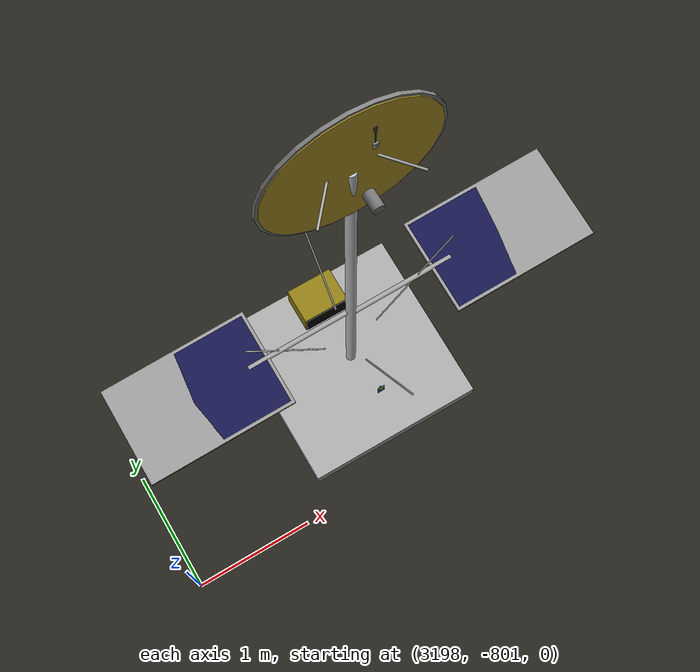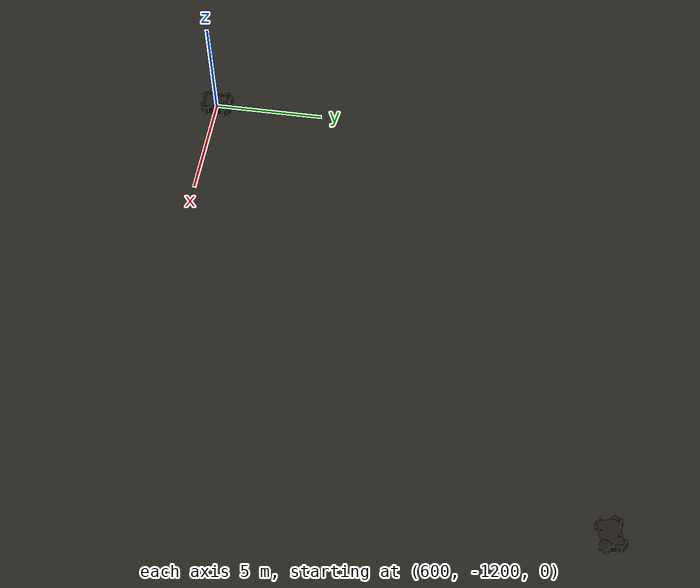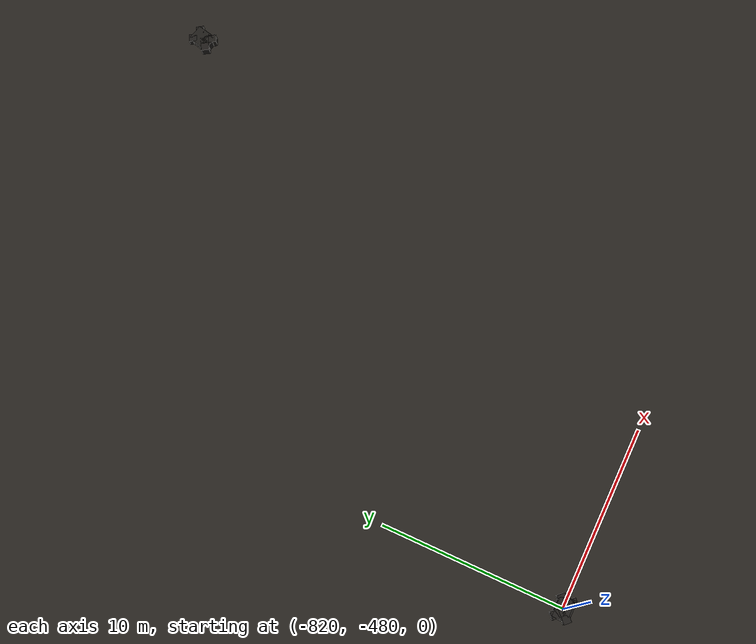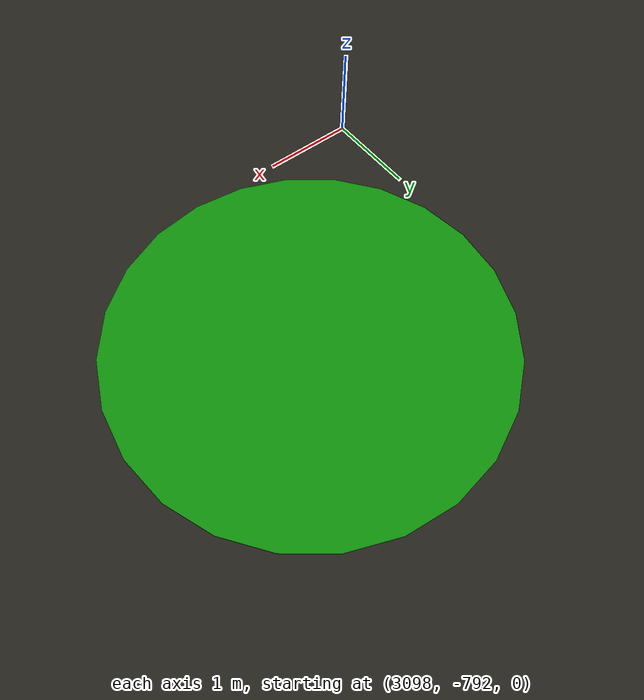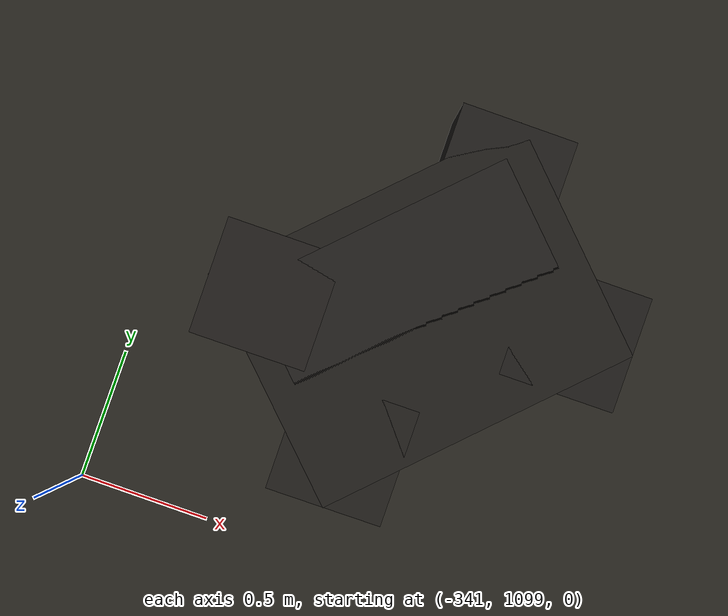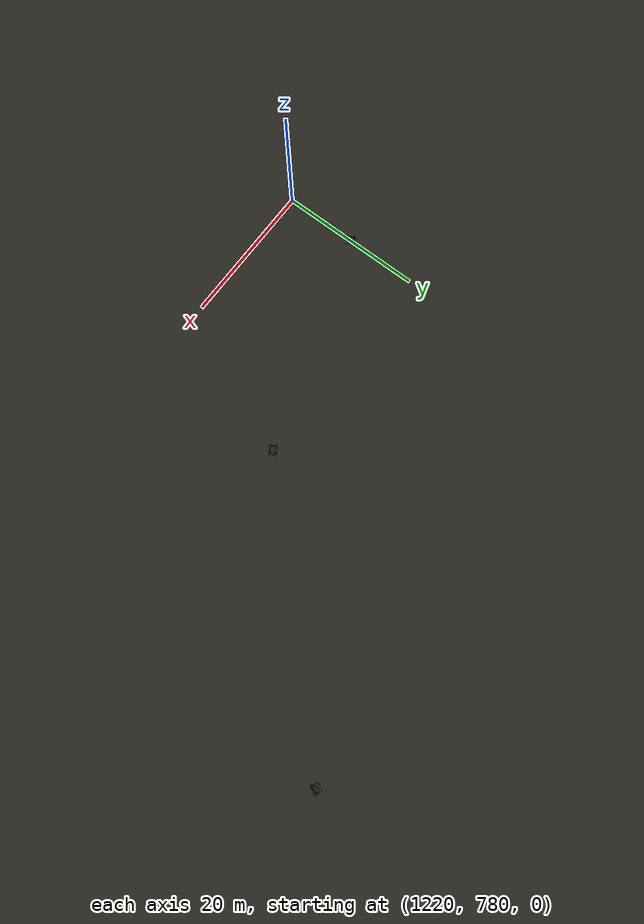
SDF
<?xml version="1.0" ?>
<sdf version="1.9">
  <world name="lunar_south_pole">

    <!-- ================================================================
         PHYSICS
         ================================================================ -->
    <physics name="lunar_ode" type="ode" default="true">
      <!-- Lunar surface gravity: 1.62 m/s² downward -->
      <gravity>0 0 -1.62</gravity>

      <!-- Real-time factor: 1.0 for hardware-in-the-loop testing -->
      <real_time_factor>1.0</real_time_factor>
      <real_time_update_rate>1000</real_time_update_rate>
      <max_step_size>0.001</max_step_size>

      <ode>
        <solver>
          <!-- Quickstep with high iterations for stable regolith contact -->
          <type>quick</type>
          <iters>200</iters>
          <precon_iters>0</precon_iters>
          <sor>1.3</sor>
          <use_dynamic_moi_rescaling>true</use_dynamic_moi_rescaling>
        </solver>
        <constraints>
          <!-- Tight tolerances for rover wheel contact accuracy -->
          <cfm>1e-5</cfm>
          <erp>0.2</erp>
          <contact_max_correcting_vel>100</contact_max_correcting_vel>
          <contact_surface_layer>0.001</contact_surface_layer>
        </constraints>
      </ode>
    </physics>

    <scene>
      <ambient>0.05 0.05 0.05 1</ambient>
      <background>0.0 0.0 0.0 1</background>  <!-- black sky (no atmosphere) -->
      <sky>
        <clouds>
          <speed>0</speed>
        </clouds>
      </sky>
      <!-- Shadows disabled: WSL2 Mesa D3D12 lacks GL3PlusTextureGpu::copyTo -->
      <shadows>false</shadows>
      <fog>
        <!-- No fog - vacuum environment -->
        <type>none</type>
      </fog>
    </scene>

    <!-- Directional sun light - low-angle, casting very long shadows -->
    <light name="sun" type="directional">
      <cast_shadows>false</cast_shadows>
      <pose>0 0 10 0 0 0</pose>
      <!-- Direction vector pointing toward the light source -->
      <direction>0.0 0.9994 -0.0349</direction>
      <!-- Slightly warm sunlight (no atmospheric scattering, raw solar) -->
      <diffuse>1.0 0.95 0.85 1</diffuse>
      <specular>0.5 0.5 0.4 1</specular>
      <attenuation>
        <range>1000</range>
        <constant>0.9</constant>
        <linear>0.01</linear>
        <quadratic>0.001</quadratic>
      </attenuation>
    </light>

    <!-- Weak fill light simulating Earthshine / instrument self-illumination -->
    <light name="earthshine" type="directional">
      <cast_shadows>false</cast_shadows>
      <direction>0 0 -1</direction>
      <diffuse>0.01 0.01 0.02 1</diffuse>
      <specular>0 0 0 1</specular>
    </light>

    <model name="terrain">
      <static>true</static>
      <link name="terrain_link">
        <collision name="terrain_collision">
          <geometry>
            <plane>
              <normal>0 0 1</normal>
              <size>5000 5000</size>
            </plane>
          </geometry>
          <surface>
            <friction>
              <ode>
                <!-- Regolith friction coefficients (Heiken 1991, Carrier 1991) -->
                <mu>0.7</mu>
                <mu2>0.65</mu2>
                <fdir1>1 0 0</fdir1>
                <slip1>0.0</slip1>
                <slip2>0.0</slip2>
              </ode>
              <bullet>
                <friction>0.7</friction>
                <friction2>0.65</friction2>
                <rolling_friction>0.05</rolling_friction>
              </bullet>
            </friction>
            <bounce>
              <restitution_coefficient>0.01</restitution_coefficient>
              <threshold>100000</threshold>
            </bounce>
            <contact>
              <ode>
                <soft_cfm>1e-5</soft_cfm>
                <soft_erp>0.15</soft_erp>
                <kp>1e6</kp>
                <kd>100</kd>
                <max_vel>0.1</max_vel>
                <min_depth>0.001</min_depth>
              </ode>
            </contact>
          </surface>
        </collision>
        <visual name="terrain_visual">
          <geometry>
            <plane>
              <normal>0 0 1</normal>
              <size>5000 5000</size>
            </plane>
          </geometry>
          <material>
            <!-- Lunar regolith albedo ~0.12 (Apollo measurements) -->
            <ambient>0.10 0.09 0.08 1</ambient>
            <diffuse>0.14 0.13 0.11 1</diffuse>
            <specular>0.01 0.01 0.01 1</specular>
          </material>
        </visual>
      </link>
    </model>

    <!-- Boulder cluster near Shackleton rim (NE quadrant) -->
    <include>
      <uri>model://lunar_boulder</uri>
      <name>boulder_001</name>
      <pose>1250.0 800.0 0 0.0 0.0 0.523</pose>
    </include>

    <include>
      <uri>model://lunar_boulder</uri>
      <name>boulder_002</name>
      <pose>1280.0 830.0 0 0.12 0.0 1.047</pose>
      <scale>0.6 0.6 0.6</scale>
    </include>

    <include>
      <uri>model://lunar_boulder</uri>
      <name>boulder_003</name>
      <pose>1220.0 790.0 0 0.0 0.08 2.094</pose>
      <scale>1.4 1.4 1.4</scale>
    </include>

    <!-- Isolated boulder - traverse path obstacle -->
    <include>
      <uri>model://lunar_boulder</uri>
      <name>boulder_004</name>
      <pose>-340.0 1100.0 0 0.05 0.0 0.785</pose>
      <scale>0.8 0.8 0.8</scale>
    </include>

    <!-- Boulder cluster near crater_alpha -->
    <include>
      <uri>model://lunar_boulder</uri>
      <name>boulder_005</name>
      <pose>-800.0 -450.0 0 0.0 0.15 1.309</pose>
    </include>

    <include>
      <uri>model://lunar_boulder</uri>
      <name>boulder_006</name>
      <pose>-820.0 -480.0 0 0.1 0.0 0.0</pose>
      <scale>1.8 1.8 1.8</scale>
    </include>

    <!-- Scattered boulders - SW quadrant -->
    <include>
      <uri>model://lunar_boulder</uri>
      <name>boulder_007</name>
      <pose>-1500.0 -200.0 0 0.0 0.0 3.665</pose>
      <scale>0.5 0.5 0.5</scale>
    </include>

    <include>
      <uri>model://lunar_boulder</uri>
      <name>boulder_008</name>
      <pose>-1550.0 -230.0 0 0.07 0.12 2.356</pose>
    </include>

    <include>
      <uri>model://lunar_boulder</uri>
      <name>boulder_009</name>
      <pose>600.0 -1200.0 0 0.0 0.0 1.571</pose>
      <scale>2.0 2.0 2.0</scale>
    </include>

    <include>
      <uri>model://lunar_boulder</uri>
      <name>boulder_010</name>
      <pose>620.0 -1180.0 0 0.15 0.0 0.262</pose>
      <scale>0.7 0.7 0.7</scale>
    </include>

    <!-- Crater Alpha: ~80m diameter, 12m deep, SE quadrant -->
    <model name="crater_alpha">
      <static>true</static>
      <pose>-900.0 -600.0 -6.0 0 0 0</pose>
      <link name="crater_link">
        <collision name="crater_rim">
          <geometry>
            <cylinder>
              <radius>40.0</radius>
              <length>1.5</length>
            </cylinder>
          </geometry>
          <surface>
            <friction>
              <ode><mu>0.75</mu><mu2>0.70</mu2></ode>
            </friction>
          </surface>
        </collision>
        <visual name="crater_visual">
          <geometry>
            <cylinder>
              <radius>40.0</radius>
              <length>1.5</length>
            </cylinder>
          </geometry>
          <material>
            <script>
              <uri>file://media/materials/scripts/gazebo.material</uri>
              <name>Gazebo/DarkGrey</name>
            </script>
            <ambient>0.08 0.08 0.08 1</ambient>
            <diffuse>0.12 0.11 0.10 1</diffuse>
            <specular>0.01 0.01 0.01 1</specular>
          </material>
        </visual>
      </link>
    </model>

    <!-- Crater Beta: ~200m diameter, PSR candidate, NW quadrant -->
    <model name="crater_beta">
      <static>true</static>
      <pose>-1800.0 1400.0 -18.0 0 0 0</pose>
      <link name="crater_link">
        <collision name="crater_rim">
          <geometry>
            <cylinder>
              <radius>100.0</radius>
              <length>2.0</length>
            </cylinder>
          </geometry>
          <surface>
            <friction>
              <ode>
                <!-- Ice-contaminated regolith in PSR -->
                <mu>0.5</mu>
                <mu2>0.45</mu2>
              </ode>
            </friction>
          </surface>
        </collision>
        <visual name="crater_visual">
          <geometry>
            <cylinder>
              <radius>100.0</radius>
              <length>2.0</length>
            </cylinder>
          </geometry>
          <material>
            <ambient>0.04 0.04 0.05 1</ambient>
            <diffuse>0.06 0.06 0.08 1</diffuse>
            <specular>0.02 0.02 0.03 1</specular>
          </material>
        </visual>
      </link>
    </model>

    <!-- Crater Gamma: ~50m diameter, fresh impact, NE quadrant -->
    <model name="crater_gamma">
      <static>true</static>
      <pose>2000.0 1800.0 -4.0 0 0 0</pose>
      <link name="crater_link">
        <collision name="crater_rim">
          <geometry>
            <cylinder>
              <radius>25.0</radius>
              <length>1.0</length>
            </cylinder>
          </geometry>
        </collision>
        <visual name="crater_visual">
          <geometry>
            <cylinder>
              <radius>25.0</radius>
              <length>1.0</length>
            </cylinder>
          </geometry>
          <material>
            <!-- Fresh ejecta - slightly brighter -->
            <ambient>0.12 0.11 0.10 1</ambient>
            <diffuse>0.18 0.16 0.14 1</diffuse>
            <specular>0.02 0.02 0.02 1</specular>
          </material>
        </visual>
      </link>
    </model>

    <include>
      <uri>model://comms_relay_station</uri>
      <name>comms_relay_primary</name>
      <pose>3200.0 -800.0 0 0 0 0</pose>
    </include>

    <wind>
      <linear_velocity>0 0 0</linear_velocity>
    </wind>

    <model name="spawn_marker">
      <static>true</static>
      <pose>3100.0 -790.0 0.01 0 0 0</pose>
      <link name="marker_link">
        <visual name="marker_visual">
          <geometry>
            <cylinder>
              <radius>2.0</radius>
              <length>0.02</length>
            </cylinder>
          </geometry>
          <material>
            <ambient>0.0 0.8 0.0 0.5</ambient>
            <diffuse>0.0 1.0 0.0 0.5</diffuse>
          </material>
        </visual>
      </link>
    </model>

    <!-- ================================================================
         GUI CAMERA - positioned for overview of terrain
         ================================================================ -->
    <gui fullscreen="0">
      <camera name="user_camera">
        <pose>-200 -5000 3000 0 0.8 1.57</pose>
        <view_controller>orbit</view_controller>
        <projection_type>perspective</projection_type>
      </camera>
    </gui>

  </world>
</sdf>

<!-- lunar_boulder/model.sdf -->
<sdf version="1.9">
  <model name="lunar_boulder">

    <!-- Boulder is quasi-static once settled; not constrained to be static
         so it can be displaced by rover contact -->
    <static>false</static>

    <link name="boulder_link">

      <inertial>
        <mass>2170.0</mass>
        <!-- Inertia of approximate ellipsoid: semi-axes 0.70, 0.55, 0.45 m -->
        <!-- Ixx = (1/5) * m * (b^2 + c^2) = 0.2 * 2170 * (0.3025 + 0.2025) = 219.2 -->
        <!-- Iyy = (1/5) * m * (a^2 + c^2) = 0.2 * 2170 * (0.49   + 0.2025) = 303.5 -->
        <!-- Izz = (1/5) * m * (a^2 + b^2) = 0.2 * 2170 * (0.49   + 0.3025) = 344.5 -->
        <inertia>
          <ixx>219.2</ixx>
          <ixy>0.0</ixy>
          <ixz>0.0</ixz>
          <iyy>303.5</iyy>
          <iyz>0.0</iyz>
          <izz>344.5</izz>
        </inertia>
        <pose>0 0 0 0 0 0</pose>
      </inertial>

      <!-- Primary body: 1.2m × 0.90m × 0.70m -->
      <collision name="col_main">
        <pose>0 0 0 0 0 0</pose>
        <geometry>
          <box>
            <size>1.20 0.90 0.70</size>
          </box>
        </geometry>
        <surface>
          <friction>
            <ode>
              <!-- Regolith-on-basalt friction (Carrier et al. 1991) -->
              <mu>0.70</mu>
              <mu2>0.65</mu2>
              <fdir1>0 0 0</fdir1>
              <slip1>0.0</slip1>
              <slip2>0.0</slip2>
            </ode>
            <bullet>
              <friction>0.70</friction>
              <friction2>0.65</friction2>
              <rolling_friction>0.05</rolling_friction>
            </bullet>
            <torsional>
              <coefficient>0.001</coefficient>
              <use_patch_radius>true</use_patch_radius>
              <patch_radius>0.1</patch_radius>
              <surface_radius>0.6</surface_radius>
              <ode>
                <slip>1e-4</slip>
              </ode>
            </torsional>
          </friction>
          <bounce>
            <!-- Basalt is not very elastic; low restitution -->
            <restitution_coefficient>0.03</restitution_coefficient>
            <threshold>100000</threshold>
          </bounce>
          <contact>
            <ode>
              <!-- Stiff contact for rock -->
              <soft_cfm>1e-6</soft_cfm>
              <soft_erp>0.2</soft_erp>
              <kp>5e7</kp>
              <kd>500</kd>
              <max_vel>0.5</max_vel>
              <min_depth>0.0005</min_depth>
            </ode>
          </contact>
        </surface>
      </collision>

      <!-- Chamfer: front-right edge (45° diagonal, reduce corner sharpness) -->
      <collision name="col_chamfer_fr">
        <pose>0.45 0.30 0 0 0 0.785398</pose>
        <geometry>
          <box>
            <size>0.42 0.42 0.70</size>
          </box>
        </geometry>
        <surface>
          <friction>
            <ode><mu>0.70</mu><mu2>0.65</mu2></ode>
          </friction>
        </surface>
      </collision>

      <!-- Chamfer: front-left edge -->
      <collision name="col_chamfer_fl">
        <pose>0.45 -0.30 0 0 0 0.785398</pose>
        <geometry>
          <box>
            <size>0.42 0.42 0.70</size>
          </box>
        </geometry>
        <surface>
          <friction>
            <ode><mu>0.70</mu><mu2>0.65</mu2></ode>
          </friction>
        </surface>
      </collision>

      <!-- Chamfer: rear-right edge -->
      <collision name="col_chamfer_rr">
        <pose>-0.45 0.30 0 0 0 0.785398</pose>
        <geometry>
          <box>
            <size>0.42 0.42 0.70</size>
          </box>
        </geometry>
        <surface>
          <friction>
            <ode><mu>0.70</mu><mu2>0.65</mu2></ode>
          </friction>
        </surface>
      </collision>

      <!-- Chamfer: rear-left edge -->
      <collision name="col_chamfer_rl">
        <pose>-0.45 -0.30 0 0 0 0.785398</pose>
        <geometry>
          <box>
            <size>0.42 0.42 0.70</size>
          </box>
        </geometry>
        <surface>
          <friction>
            <ode><mu>0.70</mu><mu2>0.65</mu2></ode>
          </friction>
        </surface>
      </collision>

      <!-- Top/bottom rounding: two thinner boxes in Z -->
      <collision name="col_top_round">
        <pose>0 0 0.28 0 0 0</pose>
        <geometry>
          <box>
            <size>1.0 0.72 0.14</size>
          </box>
        </geometry>
        <surface>
          <friction>
            <ode><mu>0.70</mu><mu2>0.65</mu2></ode>
          </friction>
        </surface>
      </collision>

      <collision name="col_bot_round">
        <pose>0 0 -0.28 0 0 0</pose>
        <geometry>
          <box>
            <size>1.0 0.72 0.14</size>
          </box>
        </geometry>
        <surface>
          <friction>
            <ode><mu>0.70</mu><mu2>0.65</mu2></ode>
          </friction>
        </surface>
      </collision>

      <visual name="vis_main">
        <pose>0 0 0 0 0 0</pose>
        <geometry>
          <box>
            <size>1.20 0.90 0.70</size>
          </box>
        </geometry>
        <material>
          <!-- Regolith-coated basalt: dark, slightly warm grey -->
          <ambient>0.07 0.065 0.060 1</ambient>
          <diffuse>0.11 0.100 0.090 1</diffuse>
          <specular>0.015 0.012 0.010 1</specular>
          <emissive>0.0 0.0 0.0 1</emissive>
        </material>
        <laser_retro>0.1</laser_retro>  <!-- LiDAR reflectance: low for dark basalt -->
      </visual>

      <visual name="vis_chamfer_fr">
        <pose>0.45 0.30 0 0 0 0.785398</pose>
        <geometry>
          <box>
            <size>0.42 0.42 0.70</size>
          </box>
        </geometry>
        <material>
          <ambient>0.072 0.067 0.062 1</ambient>
          <diffuse>0.112 0.102 0.092 1</diffuse>
          <specular>0.016 0.013 0.011 1</specular>
        </material>
      </visual>

      <visual name="vis_chamfer_fl">
        <pose>0.45 -0.30 0 0 0 0.785398</pose>
        <geometry>
          <box>
            <size>0.42 0.42 0.70</size>
          </box>
        </geometry>
        <material>
          <ambient>0.068 0.063 0.058 1</ambient>
          <diffuse>0.108 0.098 0.088 1</diffuse>
          <specular>0.014 0.011 0.009 1</specular>
        </material>
      </visual>

      <visual name="vis_chamfer_rr">
        <pose>-0.45 0.30 0 0 0 0.785398</pose>
        <geometry>
          <box>
            <size>0.42 0.42 0.70</size>
          </box>
        </geometry>
        <material>
          <ambient>0.073 0.068 0.063 1</ambient>
          <diffuse>0.113 0.103 0.093 1</diffuse>
          <specular>0.015 0.012 0.010 1</specular>
        </material>
      </visual>

      <visual name="vis_chamfer_rl">
        <pose>-0.45 -0.30 0 0 0 0.785398</pose>
        <geometry>
          <box>
            <size>0.42 0.42 0.70</size>
          </box>
        </geometry>
        <material>
          <ambient>0.070 0.065 0.060 1</ambient>
          <diffuse>0.110 0.100 0.090 1</diffuse>
          <specular>0.014 0.011 0.009 1</specular>
        </material>
      </visual>

      <visual name="vis_top">
        <pose>0 0 0.28 0 0 0</pose>
        <geometry>
          <box>
            <size>1.0 0.72 0.14</size>
          </box>
        </geometry>
        <material>
          <ambient>0.075 0.070 0.065 1</ambient>
          <diffuse>0.115 0.105 0.095 1</diffuse>
          <specular>0.018 0.015 0.013 1</specular>
        </material>
      </visual>

      <visual name="vis_bottom">
        <pose>0 0 -0.28 0 0 0</pose>
        <geometry>
          <box>
            <size>1.0 0.72 0.14</size>
          </box>
        </geometry>
        <material>
          <ambient>0.065 0.060 0.055 1</ambient>
          <diffuse>0.105 0.095 0.085 1</diffuse>
          <specular>0.013 0.010 0.008 1</specular>
        </material>
      </visual>

      <!-- Self-collide disabled for performance: boulder-boulder interactions
           are rare and expensive -->
      <self_collide>false</self_collide>

      <!-- Enable wind: false (vacuum) -->
      <enable_wind>false</enable_wind>

    </link>

  </model>
</sdf>

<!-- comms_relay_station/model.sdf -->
<sdf version="1.9">
  <model name="comms_relay_station">

    <static>true</static>

    <link name="base_link">
      <pose>0 0 0.075 0 0 0</pose>

      <inertial>
        <mass>25.0</mass>
        <inertia>
          <ixx>4.6875</ixx>   <!-- (1/12)*m*(h^2+d^2): box approx -->
          <ixy>0</ixy>
          <ixz>0</ixz>
          <iyy>4.6875</iyy>
          <iyz>0</iyz>
          <izz>9.375</izz>
        </inertia>
      </inertial>

      <collision name="base_collision">
        <geometry>
          <box>
            <size>1.5 1.5 0.15</size>
          </box>
        </geometry>
        <surface>
          <friction>
            <ode>
              <!-- Very high friction: anchored to regolith surface -->
              <mu>2.0</mu>
              <mu2>2.0</mu2>
            </ode>
          </friction>
          <contact>
            <ode>
              <kp>1e8</kp>
              <kd>1000</kd>
            </ode>
          </contact>
        </surface>
      </collision>

      <visual name="base_visual">
        <geometry>
          <box>
            <size>1.5 1.5 0.15</size>
          </box>
        </geometry>
        <material>
          <!-- Structural aluminum: silver-grey with some oxidation -->
          <ambient>0.45 0.45 0.45 1</ambient>
          <diffuse>0.65 0.65 0.65 1</diffuse>
          <specular>0.30 0.30 0.30 1</specular>
        </material>
      </visual>

      <!-- Base anchor legs (4 diagonal legs at corners) -->
      <visual name="leg_NE">
        <pose>0.55 0.55 -0.15 0 0.7854 0.7854</pose>
        <geometry><cylinder><radius>0.025</radius><length>0.4</length></cylinder></geometry>
        <material>
          <ambient>0.40 0.40 0.40 1</ambient>
          <diffuse>0.60 0.60 0.60 1</diffuse>
          <specular>0.25 0.25 0.25 1</specular>
        </material>
      </visual>

      <visual name="leg_NW">
        <pose>-0.55 0.55 -0.15 0 -0.7854 0.7854</pose>
        <geometry><cylinder><radius>0.025</radius><length>0.4</length></cylinder></geometry>
        <material>
          <ambient>0.40 0.40 0.40 1</ambient>
          <diffuse>0.60 0.60 0.60 1</diffuse>
          <specular>0.25 0.25 0.25 1</specular>
        </material>
      </visual>

      <visual name="leg_SE">
        <pose>0.55 -0.55 -0.15 0 0.7854 -0.7854</pose>
        <geometry><cylinder><radius>0.025</radius><length>0.4</length></cylinder></geometry>
        <material>
          <ambient>0.40 0.40 0.40 1</ambient>
          <diffuse>0.60 0.60 0.60 1</diffuse>
          <specular>0.25 0.25 0.25 1</specular>
        </material>
      </visual>

      <visual name="leg_SW">
        <pose>-0.55 -0.55 -0.15 0 -0.7854 -0.7854</pose>
        <geometry><cylinder><radius>0.025</radius><length>0.4</length></cylinder></geometry>
        <material>
          <ambient>0.40 0.40 0.40 1</ambient>
          <diffuse>0.60 0.60 0.60 1</diffuse>
          <specular>0.25 0.25 0.25 1</specular>
        </material>
      </visual>
    </link>

    <link name="mast_link">
      <pose>0 0 2.225 0 0 0</pose>  <!-- base_h/2 + 0.15 + mast_h/2 = 0.075+0.15+2.0 -->

      <inertial>
        <mass>3.5</mass>
        <inertia>
          <ixx>4.667</ixx>   <!-- (1/12)*m*L^2 for slender rod: (1/12)*3.5*16 -->
          <ixy>0</ixy>
          <ixz>0</ixz>
          <iyy>4.667</iyy>
          <iyz>0</iyz>
          <izz>0.0028</izz>
        </inertia>
      </inertial>

      <collision name="mast_collision">
        <geometry>
          <cylinder>
            <radius>0.040</radius>
            <length>4.0</length>
          </cylinder>
        </geometry>
      </collision>

      <visual name="mast_visual">
        <geometry>
          <cylinder>
            <radius>0.040</radius>
            <length>4.0</length>
          </cylinder>
        </geometry>
        <material>
          <ambient>0.50 0.50 0.50 1</ambient>
          <diffuse>0.75 0.75 0.75 1</diffuse>
          <specular>0.40 0.40 0.40 1</specular>
        </material>
      </visual>

      <!-- Cable braces (visual only, 4 diagonal braces from mast to base) -->
      <visual name="brace_N">
        <pose>0.0 0.55 -0.8 -0.5236 0 0</pose>
        <geometry><cylinder><radius>0.006</radius><length>1.25</length></cylinder></geometry>
        <material>
          <ambient>0.6 0.6 0.6 1</ambient>
          <diffuse>0.8 0.8 0.8 1</diffuse>
          <specular>0.2 0.2 0.2 1</specular>
        </material>
      </visual>

      <visual name="brace_S">
        <pose>0.0 -0.55 -0.8 0.5236 0 0</pose>
        <geometry><cylinder><radius>0.006</radius><length>1.25</length></cylinder></geometry>
        <material>
          <ambient>0.6 0.6 0.6 1</ambient>
          <diffuse>0.8 0.8 0.8 1</diffuse>
          <specular>0.2 0.2 0.2 1</specular>
        </material>
      </visual>

      <visual name="brace_E">
        <pose>0.55 0.0 -0.8 0 0.5236 0</pose>
        <geometry><cylinder><radius>0.006</radius><length>1.25</length></cylinder></geometry>
        <material>
          <ambient>0.6 0.6 0.6 1</ambient>
          <diffuse>0.8 0.8 0.8 1</diffuse>
          <specular>0.2 0.2 0.2 1</specular>
        </material>
      </visual>

      <visual name="brace_W">
        <pose>-0.55 0.0 -0.8 0 -0.5236 0</pose>
        <geometry><cylinder><radius>0.006</radius><length>1.25</length></cylinder></geometry>
        <material>
          <ambient>0.6 0.6 0.6 1</ambient>
          <diffuse>0.8 0.8 0.8 1</diffuse>
          <specular>0.2 0.2 0.2 1</specular>
        </material>
      </visual>
    </link>

    <link name="hga_dish_link">
      <!-- Positioned at top of mast, tilted toward Earth direction -->
      <!-- Earth elevation ~2-5° above horizon, azimuth ~180° (south) -->
      <!-- Dish normal points toward Earth: pitch = -(90° - 3°) = -87° from zenith -->
      <pose>0 0 4.3 -1.518 0 3.14159</pose>  <!-- ≈ 87° tilt south -->

      <inertial>
        <mass>4.5</mass>
        <inertia>
          <ixx>0.810</ixx>   <!-- disk: (1/4)*m*r^2 + (1/12)*m*h^2 -->
          <ixy>0</ixy>
          <ixz>0</ixz>
          <iyy>0.810</iyy>
          <iyz>0</iyz>
          <izz>1.620</izz>
        </inertia>
      </inertial>

      <collision name="dish_collision">
        <geometry>
          <cylinder>
            <!-- Shallow cylinder approximates the dish reflector -->
            <radius>0.60</radius>
            <length>0.08</length>
          </cylinder>
        </geometry>
      </collision>

      <!-- Dish reflector surface -->
      <visual name="dish_reflector">
        <geometry>
          <cylinder>
            <radius>0.60</radius>
            <length>0.04</length>
          </cylinder>
        </geometry>
        <material>
          <!-- Gold-colored CFRP reflector with metallic sheen -->
          <ambient>0.55 0.48 0.10 1</ambient>
          <diffuse>0.70 0.60 0.15 1</diffuse>
          <specular>0.80 0.75 0.30 1</specular>
        </material>
      </visual>

      <!-- Dish rim ring -->
      <visual name="dish_rim">
        <pose>0 0 0 0 0 0</pose>
        <geometry>
          <cylinder>
            <radius>0.62</radius>
            <length>0.025</length>
          </cylinder>
        </geometry>
        <material>
          <ambient>0.35 0.35 0.35 1</ambient>
          <diffuse>0.50 0.50 0.50 1</diffuse>
          <specular>0.40 0.40 0.40 1</specular>
        </material>
      </visual>

      <!-- Feed horn at focal point (0.25m from dish center) -->
      <visual name="feed_horn">
        <pose>0 0 0.25 0 0 0</pose>
        <geometry>
          <cylinder>
            <radius>0.04</radius>
            <length>0.12</length>
          </cylinder>
        </geometry>
        <material>
          <ambient>0.30 0.30 0.30 1</ambient>
          <diffuse>0.45 0.45 0.45 1</diffuse>
          <specular>0.35 0.35 0.35 1</specular>
        </material>
      </visual>

      <!-- Feed support struts (4x) -->
      <visual name="strut_1">
        <pose>0.25 0 0.12 0 0.7 0</pose>
        <geometry><cylinder><radius>0.008</radius><length>0.32</length></cylinder></geometry>
        <material>
          <ambient>0.45 0.45 0.45 1</ambient>
          <diffuse>0.65 0.65 0.65 1</diffuse>
          <specular>0.30 0.30 0.30 1</specular>
        </material>
      </visual>

      <visual name="strut_2">
        <pose>-0.25 0 0.12 0 -0.7 0</pose>
        <geometry><cylinder><radius>0.008</radius><length>0.32</length></cylinder></geometry>
        <material>
          <ambient>0.45 0.45 0.45 1</ambient>
          <diffuse>0.65 0.65 0.65 1</diffuse>
          <specular>0.30 0.30 0.30 1</specular>
        </material>
      </visual>
    </link>

    <link name="solar_panel_east">
      <!-- Horizontal arm extends 1.0m east from mast, panels face up/north -->
      <pose>1.3 0 1.5 0 -0.0349 0</pose>  <!-- 2° tilt toward sun -->

      <inertial>
        <mass>8.0</mass>
        <inertia>
          <ixx>0.427</ixx>
          <ixy>0</ixy>
          <ixz>0</ixz>
          <iyy>1.413</iyy>
          <iyz>0</iyz>
          <izz>1.840</izz>
        </inertia>
      </inertial>

      <collision name="panel_collision">
        <geometry>
          <box><size>1.2 0.80 0.025</size></box>
        </geometry>
      </collision>

      <!-- Solar cell face (pointing upward / toward sun) -->
      <visual name="cells_top">
        <pose>0 0 0.01 0 0 0</pose>
        <geometry><box><size>1.15 0.75 0.005</size></box></geometry>
        <material>
          <!-- Deep navy/dark blue: GaAs solar cell appearance -->
          <ambient>0.05 0.05 0.20 1</ambient>
          <diffuse>0.08 0.08 0.30 1</diffuse>
          <specular>0.20 0.20 0.40 1</specular>
        </material>
      </visual>

      <!-- Panel substrate (back face, white) -->
      <visual name="substrate_back">
        <pose>0 0 -0.01 0 0 0</pose>
        <geometry><box><size>1.2 0.80 0.015</size></box></geometry>
        <material>
          <ambient>0.85 0.85 0.85 1</ambient>
          <diffuse>0.95 0.95 0.95 1</diffuse>
          <specular>0.10 0.10 0.10 1</specular>
        </material>
      </visual>

      <!-- Panel frame (aluminum edge) -->
      <visual name="panel_frame">
        <geometry><box><size>1.2 0.80 0.025</size></box></geometry>
        <material>
          <ambient>0.40 0.40 0.40 1</ambient>
          <diffuse>0.60 0.60 0.60 1</diffuse>
          <specular>0.35 0.35 0.35 1</specular>
        </material>
      </visual>

      <!-- Arm connecting to mast -->
      <visual name="arm_east">
        <pose>-0.85 0 0 0 1.5708 0</pose>
        <geometry><cylinder><radius>0.02</radius><length>0.85</length></cylinder></geometry>
        <material>
          <ambient>0.45 0.45 0.45 1</ambient>
          <diffuse>0.65 0.65 0.65 1</diffuse>
          <specular>0.30 0.30 0.30 1</specular>
        </material>
      </visual>
    </link>

    <link name="solar_panel_west">
      <pose>-1.3 0 1.5 0 -0.0349 0</pose>

      <inertial>
        <mass>8.0</mass>
        <inertia>
          <ixx>0.427</ixx><ixy>0</ixy><ixz>0</ixz>
          <iyy>1.413</iyy><iyz>0</iyz>
          <izz>1.840</izz>
        </inertia>
      </inertial>

      <collision name="panel_collision">
        <geometry><box><size>1.2 0.80 0.025</size></box></geometry>
      </collision>

      <visual name="cells_top">
        <pose>0 0 0.01 0 0 0</pose>
        <geometry><box><size>1.15 0.75 0.005</size></box></geometry>
        <material>
          <ambient>0.05 0.05 0.20 1</ambient>
          <diffuse>0.08 0.08 0.30 1</diffuse>
          <specular>0.20 0.20 0.40 1</specular>
        </material>
      </visual>

      <visual name="substrate_back">
        <pose>0 0 -0.01 0 0 0</pose>
        <geometry><box><size>1.2 0.80 0.015</size></box></geometry>
        <material>
          <ambient>0.85 0.85 0.85 1</ambient>
          <diffuse>0.95 0.95 0.95 1</diffuse>
          <specular>0.10 0.10 0.10 1</specular>
        </material>
      </visual>

      <visual name="panel_frame">
        <geometry><box><size>1.2 0.80 0.025</size></box></geometry>
        <material>
          <ambient>0.40 0.40 0.40 1</ambient>
          <diffuse>0.60 0.60 0.60 1</diffuse>
          <specular>0.35 0.35 0.35 1</specular>
        </material>
      </visual>

      <visual name="arm_west">
        <pose>0.85 0 0 0 1.5708 0</pose>
        <geometry><cylinder><radius>0.02</radius><length>0.85</length></cylinder></geometry>
        <material>
          <ambient>0.45 0.45 0.45 1</ambient>
          <diffuse>0.65 0.65 0.65 1</diffuse>
          <specular>0.30 0.30 0.30 1</specular>
        </material>
      </visual>
    </link>

    <link name="electronics_box">
      <pose>0 0.55 0.275 0 0 0</pose>

      <inertial>
        <mass>15.0</mass>
        <inertia>
          <ixx>0.179</ixx><ixy>0</ixy><ixz>0</ixz>
          <iyy>0.261</iyy><iyz>0</iyz>
          <izz>0.188</izz>
        </inertia>
      </inertial>

      <collision name="box_collision">
        <geometry><box><size>0.40 0.30 0.25</size></box></geometry>
      </collision>

      <!-- Box body: MLI-covered (gold) -->
      <visual name="box_body">
        <geometry><box><size>0.40 0.30 0.25</size></box></geometry>
        <material>
          <ambient>0.40 0.35 0.05 1</ambient>
          <diffuse>0.55 0.48 0.08 1</diffuse>
          <specular>0.60 0.55 0.15 1</specular>
        </material>
      </visual>

      <!-- Radiator panel on one face (black) -->
      <visual name="radiator">
        <pose>0 -0.155 0 0 0 0</pose>
        <geometry><box><size>0.38 0.005 0.23</size></box></geometry>
        <material>
          <ambient>0.02 0.02 0.02 1</ambient>
          <diffuse>0.03 0.03 0.03 1</diffuse>
          <specular>0.01 0.01 0.01 1</specular>
        </material>
      </visual>
    </link>

    <link name="status_leds">
      <pose>0.05 -0.40 0.35 0 0 0</pose>

      <inertial>
        <mass>0.05</mass>
        <inertia>
          <ixx>1e-5</ixx><ixy>0</ixy><ixz>0</ixz>
          <iyy>1e-5</iyy><iyz>0</iyz>
          <izz>1e-5</izz>
        </inertia>
      </inertial>

      <!-- Green LED: system nominal -->
      <visual name="led_green">
        <pose>0 0 0.06 0 0 0</pose>
        <geometry><sphere><radius>0.015</radius></sphere></geometry>
        <material>
          <ambient>0.0 0.5 0.0 1</ambient>
          <diffuse>0.0 0.8 0.0 1</diffuse>
          <specular>0.0 0.2 0.0 1</specular>
          <!-- Emissive: LED glows in darkness -->
          <emissive>0.0 0.6 0.0 1</emissive>
        </material>
      </visual>

      <!-- Amber LED: charging/power status -->
      <visual name="led_amber">
        <pose>0 0 0.03 0 0 0</pose>
        <geometry><sphere><radius>0.015</radius></sphere></geometry>
        <material>
          <ambient>0.6 0.4 0.0 1</ambient>
          <diffuse>0.9 0.6 0.0 1</diffuse>
          <specular>0.2 0.1 0.0 1</specular>
          <emissive>0.7 0.45 0.0 1</emissive>
        </material>
      </visual>

      <!-- Blue LED: active communication link -->
      <visual name="led_blue">
        <pose>0 0 0.0 0 0 0</pose>
        <geometry><sphere><radius>0.015</radius></sphere></geometry>
        <material>
          <ambient>0.0 0.0 0.6 1</ambient>
          <diffuse>0.0 0.0 0.9 1</diffuse>
          <specular>0.0 0.0 0.2 1</specular>
          <emissive>0.0 0.1 0.9 1</emissive>
        </material>
      </visual>

      <!-- LED housing panel -->
      <visual name="led_panel">
        <pose>0 -0.005 0.03 0 0 0</pose>
        <geometry><box><size>0.06 0.01 0.12</size></box></geometry>
        <material>
          <ambient>0.15 0.15 0.15 1</ambient>
          <diffuse>0.20 0.20 0.20 1</diffuse>
          <specular>0.05 0.05 0.05 1</specular>
        </material>
      </visual>
    </link>

    <link name="lga_antenna">
      <pose>0.15 0 4.5 0 0 0</pose>

      <inertial>
        <mass>0.3</mass>
        <inertia>
          <ixx>0.00225</ixx><ixy>0</ixy><ixz>0</ixz>
          <iyy>0.00225</iyy><iyz>0</iyz>
          <izz>0.000038</izz>
        </inertia>
      </inertial>

      <!-- UHF blade antenna -->
      <visual name="blade">
        <geometry><box><size>0.025 0.008 0.30</size></box></geometry>
        <material>
          <ambient>0.20 0.20 0.20 1</ambient>
          <diffuse>0.30 0.30 0.30 1</diffuse>
          <specular>0.15 0.15 0.15 1</specular>
        </material>
      </visual>

      <!-- Second blade perpendicular -->
      <visual name="blade_2">
        <pose>0 0 0 0 0 1.5708</pose>
        <geometry><box><size>0.025 0.008 0.30</size></box></geometry>
        <material>
          <ambient>0.20 0.20 0.20 1</ambient>
          <diffuse>0.30 0.30 0.30 1</diffuse>
          <specular>0.15 0.15 0.15 1</specular>
        </material>
      </visual>

      <!-- Antenna base fitting -->
      <visual name="base_fitting">
        <pose>0 0 -0.06 0 0 0</pose>
        <geometry><cylinder><radius>0.025</radius><length>0.06</length></cylinder></geometry>
        <material>
          <ambient>0.35 0.35 0.35 1</ambient>
          <diffuse>0.50 0.50 0.50 1</diffuse>
          <specular>0.25 0.25 0.25 1</specular>
        </material>
      </visual>
    </link>

  </model>
</sdf>
